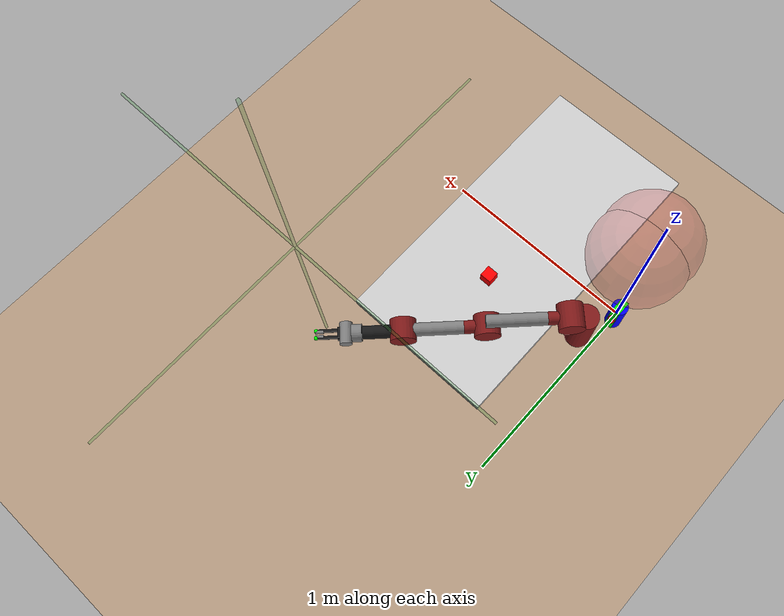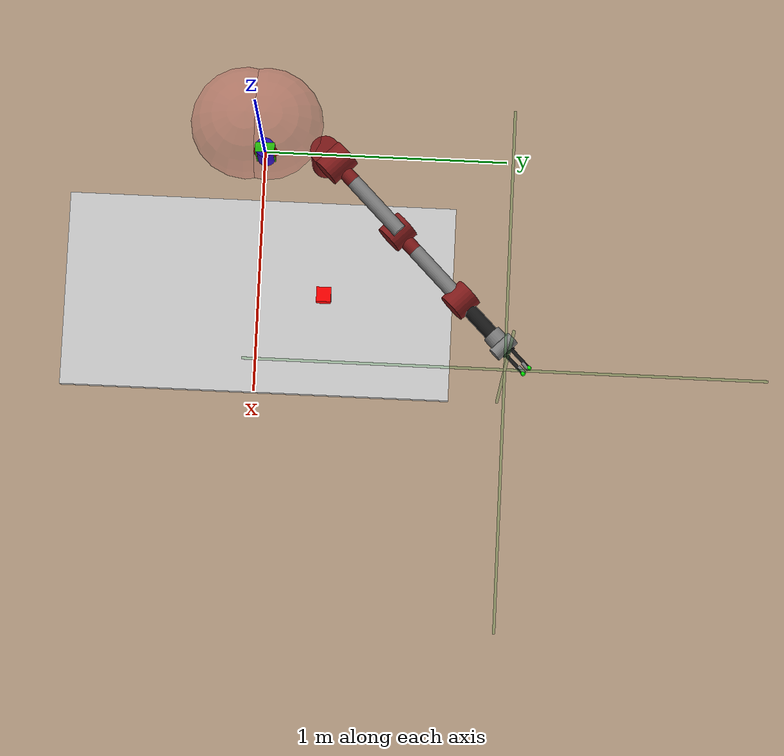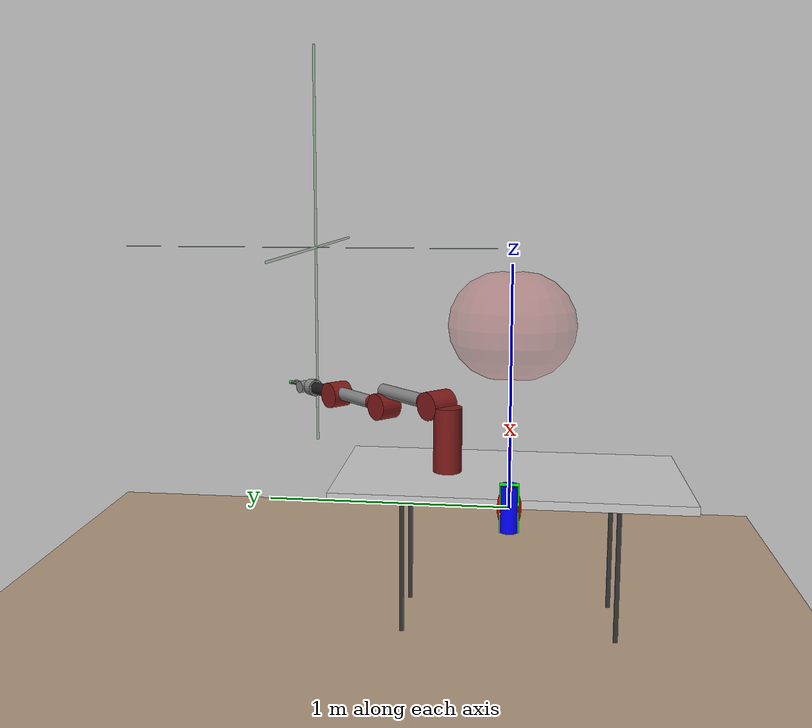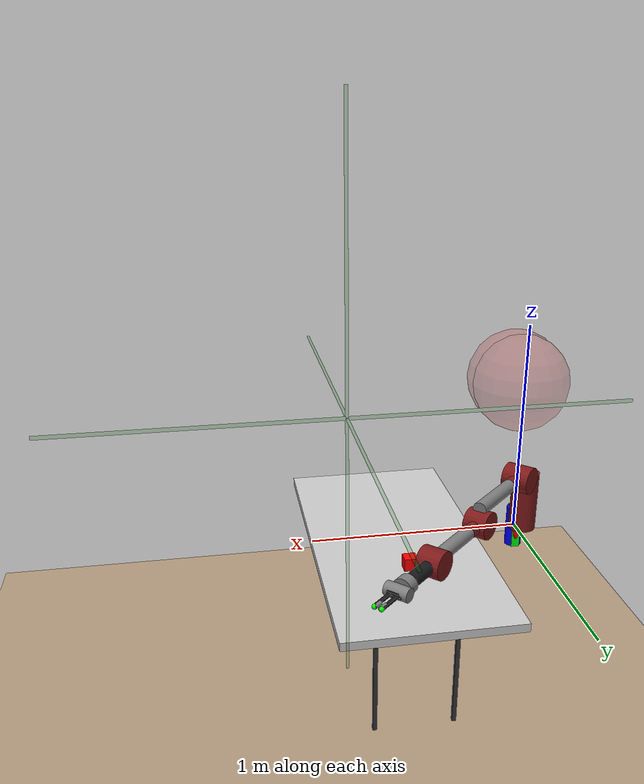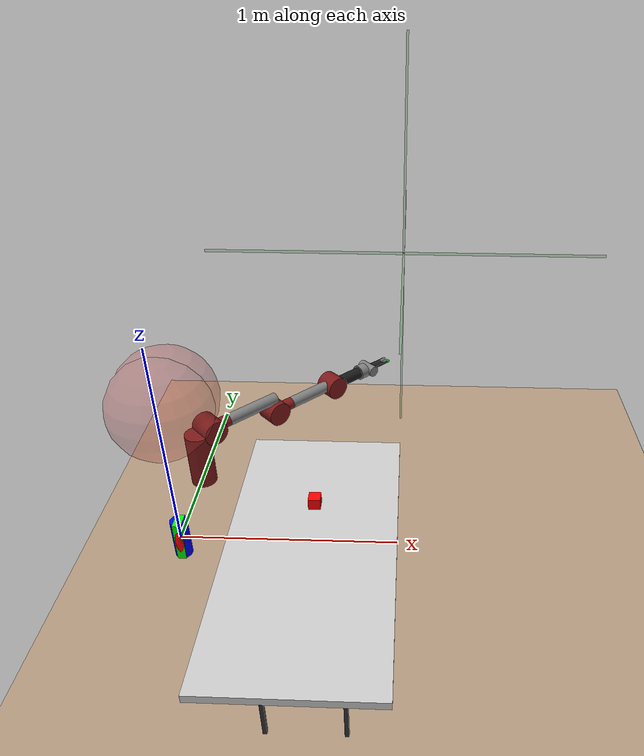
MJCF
<?xml version="1.0" encoding="utf-8"?>
<mujoco>
	<compiler coordinate="local" angle="radian" meshdir="meshes/" texturedir="texture/" strippath="false" />
	<option gravity="0 0 -9.8" timestep="0.002" cone="elliptic"/>

    <visual>
      <map znear="0.01"/>
    </visual>

	<include file="shared.xml"></include>

	<worldbody>

		<include file="robot_without_gripper.xml"></include>

		<body name="distractor1" pos="0.0 0.0 0.0">
            <site name="distractor1" type="box" pos="0.0 0.0 0" rgba="0 1.0 0 1" size="0.02 0.040 0.1"/>
            <joint name="distractor1" type="free" limited="false" damping="1"/>
            <inertial pos="0 0 0" mass="0.0000001" diaginertia="1 1 1"/>
        </body>

		<body name="distractor2" pos="0.0 0.0 0.0">
            <site name="distractor2" type="cylinder" pos="0.0 0.0 0" rgba="0 0 1.0 1" size="0.04 0.099"/>
            <joint name="distractor2" type="free" limited="false" damping="1"/>
            <inertial pos="0 0 0" mass="0.0000001" diaginertia="1 1 1"/>
        </body>

		<body name="distractor3" pos="0.0 0.0 0.0">
            <site name="distractor3" type="ellipsoid" pos="0.0 0.0 0" rgba="1.0 0 0 1" size="0.03 0.05 0.1"/>
            <joint name="distractor3" type="free" limited="false" damping="1"/>
            <inertial pos="0 0 0" mass="0.0000001" diaginertia="1 1 1"/>
        </body>

		<!-- object -->
		<body name="box" pos="0.59 0.27 0.0">
            <geom name="box" type="box"  rgba="1.0 0.0 0.0 1" size="0.03 0.03 0.03" contype="3" conaffinity="3" friction="1 0.005 0.0001" />
            <site name="box" pos="0.0 0.0 0" rgba="0 0 1 1" size="0.02 0.02 0.025"/>
            <joint name="box" type="free" limited="false" damping="1"/>
            <inertial pos="0 0 0" mass="0.1" diaginertia="1 1 1"/>
        </body>

		<body name="target" pos="0.0 0.0 0.0">
            <site name="target" pos="0.0 0.0 0" rgba="0 0 1 1" size="0.02 0.02 0.02"/>
            <joint name="target" type="free" limited="false" damping="1"/>
            <inertial pos="0 0 0" mass="0.00001"  diaginertia="1 1 1"/>
        </body>

	</worldbody>

	<actuator></actuator>
</mujoco>

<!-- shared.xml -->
<mujoco>

	<asset>
		<mesh name="base_link" file="torso/base_link.STL"/>
		<mesh name="base_link_collision" file="torso/base_link_collision.STL"/>
		<mesh name="PEDESTAL" file="base/PEDESTAL.STL"/>
		<mesh name="pedestal_link_collision" file="base/pedestal_link_collision.STL"/>
		<mesh name="H0" file="head/H0.STL"/>
		<mesh name="H1" file="head/H1.STL"/>
		<mesh name="S0" file="upper_shoulder/S0.STL"/>
		<mesh name="S1" file="lower_shoulder/S1.STL"/>
		<mesh name="E0" file="upper_elbow/E0.STL"/>
		<mesh name="E1" file="lower_elbow/E1.STL"/>
		<mesh name="W0" file="upper_forearm/W0.STL"/>
		<mesh name="W1" file="lower_forearm/W1.STL"/>
		<mesh name="W2" file="wrist/W2.STL"/>
		<mesh name="half_round_tip" file="electric_gripper/fingers/half_round_tip.STL" />
		<mesh name="electric_gripper_base" file="electric_gripper/electric_gripper_base.STL" />
		<mesh name="extended_narrow" file="electric_gripper/fingers/extended_narrow.STL"/>
		<mesh name="paddle_tip" file="electric_gripper/fingers/paddle_tip.STL"/>

		<!-- add texture files -->
		<texture builtin="gradient" height="100" rgb1="1 1 1" rgb2="0 0 0" type="skybox" width="100"/>
		<texture builtin="flat" height="1278" mark="cross" markrgb="1 1 1" name="texgeom" random="0.01" rgb1="0.8 0.6 0.4" rgb2="0.8 0.6 0.4" type="cube" width="127"/>
		<texture builtin="checker" height="100" name="texplane" rgb1="0 0 0" rgb2="0.8 0.8 0.8" type="2d" width="100"/>
		<material name="MatPlane" reflectance="0.5" shininess="1" specular="1" texrepeat="60 60" texture="texplane"/>
		<material name="geom" texture="texgeom" texuniform="true"/>

		<texture name="wooden" file="wooden.png" builtin="none" type="2d"/>
		<texture name="checker" file="checker.png" builtin="none" type="2d"/>
		<material name="tabletop1" texture="wooden" texuniform="true"/>
		<material name="tabletop2" texture="checker" texuniform="true"/>
	</asset>

	<equality>
		<weld body1="robot0:mocap" body2="left_gripper_base" solimp="0.9 0.95 0.001" solref="0.02 1"></weld>
	</equality>

	 <default>
		<geom margin="0.001" solimp="0.99 0.99 0.01" solref="0.01 1"/>
		<joint limited="true" damping="20" frictionloss="0" stiffness="0"/>
		<default class="viz">
			<geom contype="0" conaffinity="0" group="1" type="mesh"/>
		</default>

	 </default>

	 <contact>
		<exclude body1="left_upper_shoulder" body2="torso"/>
		<exclude body1="left_upper_shoulder" body2="left_upper_elbow"/>
		<exclude body1="left_lower_elbow" body2="left_upper_elbow"/>
		<exclude body1="collision_head_link_1" body2="torso"/>
		<exclude body1="collision_head_link_2" body2="torso"/>
		<exclude body1="l_gripper_r_finger" body2="l_gripper_l_finger"/>
	</contact>

</mujoco>

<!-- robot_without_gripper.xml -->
<mujoco>

    <body mocap="true" name="robot0:mocap" pos="1.0 1.0 1.0">
        <geom conaffinity="0" contype="0" pos="0 0 0" rgba="0 0.5 0 0.7" size="0.005 0.005 0.005" type="box"></geom>
        <geom conaffinity="0" contype="0" pos="0 0 0" rgba="0 0.5 0 0.1" size="1 0.005 0.005" type="box"></geom>
        <geom conaffinity="0" contype="0" pos="0 0 0" rgba="0 0.5 0 0.1" size="0.005 1 0.001" type="box"></geom>
        <geom conaffinity="0" contype="0" pos="0 0 0" rgba="0 0.5 0 0.1" size="0.005 0.005 1" type="box"></geom>
    </body>

    <light directional="false" castshadow="false" cutoff="90" exponent="1" diffuse="1 1 1" specular="0 0 0" pos="1 0 1.5" dir="-1 0 -2.5"/>
    <geom name="ground" type="plane" material="MatPlane" pos="0 0 -0.925" size="4 4 .05" rgba="0.7 0.6 0.5 1"/>

    <body name="cammount" pos="0.2 0 0.2">
      <joint name="cammount" type="free" limited="false" damping="1"/>
      <camera name="cam4" pos="0.0 0 0.0" euler="0.75 -0.75 2.5" fovy="55" mode="fixed"/>
      <inertial pos="0 0 0" mass="0.00001"  diaginertia="1 1 1"/>
    </body>

    <body name="base" pos="0 0 0">
        <inertial pos="0 0 0" mass="10" diaginertia="0.001 0.001 0.001" />
        <body name="collision_head_link_1" pos="0.11 0 0.75">
            <inertial pos="0 0 0" mass="0.0001" diaginertia="1e-008 1e-008 1e-008" />
            <geom type="sphere" size="0.22" rgba="0.8 0.3 0.3 0.3" pos="-0.07 -0.04 0" />
        </body>
        <body name="collision_head_link_2" pos="0.11 0 0.75">
            <inertial pos="0 0 0" mass="0.0001" diaginertia="1e-008 1e-008 1e-008" />
            <geom type="sphere" size="0.001" rgba="0.8 0.3 0.3 0.3" pos="0 0 0" />
            <geom type="sphere" size="0.22" rgba="0.8 0.3 0.3 0.3" pos="-0.07 0.04 0" />
        </body>
        <body name="torso" pos="0 0 0">
          <camera name="cam0" pos="0.5 0 1.5" euler="0.0 0.0 1.57" fovy="45" mode="fixed"/>

            <inertial pos="0 0 0" quat="0.997433 0.00167178 0.0715546 -0.00209003" mass="35.3365" diaginertia="1.87139 1.66268 0.779991" />

            <body name="left_arm_mount" pos="0.024645 0.219645 0.118588" quat="0.923879 0 0 0.382684">
                <inertial pos="0 0 0" mass="0.0001" diaginertia="1e-008 1e-008 1e-008" />
                <body name="left_upper_shoulder" pos="0.055695 0 0.011038">
                    <inertial pos="0.01783 0.00086 0.19127" quat="0.975667 0.0673303 -0.206117 0.0325173" mass="5.70044" diaginertia="0.0498344 0.0377511 0.0331351" />
                    <joint name="left_s0" type="hinge" pos="0 0 0" axis="0 0 1" range="-1.70168 1.70168"/>
                    <geom type="cylinder" size="0.06 0.1361" rgba="0.5 0.1 0.1 1" pos="0 0 0.1361" />
                    <body name="left_lower_shoulder" pos="0.069 0 0.27035" quat="0.707107 -0.707107 0 0">
                        <inertial pos="0.06845 0.00269 -0.00529" quat="0.447487 0.536948 0.56425 0.439391" mass="3.22698" diaginertia="0.0278991 0.0212327 0.0112937" />
                        <joint name="left_s1" type="hinge" pos="0 0 0" axis="0 0 1" range="-2.147 1.047"/>
                        <geom type="cylinder" size="0.06 0.06" rgba="0.5 0.1 0.1 1" pos="0 0 0" />
                        <body name="left_upper_elbow" pos="0.102 0 0" quat="0.5 0.5 0.5 0.5">
                            <inertial pos="-0.00276 0.00132 0.18086" quat="0.838995 -0.0423128 -0.121287 0.52876" mass="4.31272" diaginertia="0.0287695 0.0273625 0.011409" />
                            <joint name="left_e0" type="hinge" pos="0 0 0" axis="0 0 1" range="-3.05418 3.05418"/>
                            <geom type="cylinder" size="0.03 0.0535" rgba="0.5 0.1 0.1 1" pos="0 0 -0.0535" />
                            <geom name="left_upper_elbow_visual" type="cylinder" size="0.03 0.1365" pos="0 0 0.1365" />

							<body name="left_lower_elbow" pos="0.069 0 0.26242" quat="0.5 -0.5 -0.5 -0.5">
                                <inertial pos="0.02611 0.00159 -0.01117" quat="0.440433 0.577149 0.562777 0.395221" mass="2.07206" diaginertia="0.0132096 0.00950002 0.00685697" />
                                <joint name="left_e1" type="hinge" pos="0 0 0" axis="0 0 1" range="-0.05 2.618"/>
                                <geom type="cylinder" size="0.06 0.05" rgba="0.5 0.1 0.1 1" pos="0 0 0" />
                                <body name="left_upper_forearm" pos="0.10359 0 0" quat="0.5 0.5 0.5 0.5">
                                    <inertial pos="-0.00168 0.0046 0.13952" quat="0.892709 -0.0256256 0.00446984 0.449882" mass="2.24665" diaginertia="0.016916 0.0165511 0.00371123" />
                                    <joint name="left_w0" type="hinge" pos="0 0 0" axis="0 0 1" range="-3.059 3.059"/>
                                    <geom type="cylinder" size="0.03 0.044" rgba="0.5 0.1 0.1 1" pos="0 0 -0.044" />
									<geom name="left_upper_forearm_visual" type="cylinder" size="0.03 0.136" pos="0 0 0.136" />

                                    <body name="left_lower_forearm" pos="0.01 0 0.2707" quat="0.5 -0.5 -0.5 -0.5">
                                        <inertial pos="0.06041 0.00697 0.006" quat="0.456911 0.468526 0.475683 0.587743" mass="1.60979" diaginertia="0.00708828 0.00552689 0.00379383" />
                                        <joint name="left_w1" type="hinge" pos="0 0 0" axis="0 0 1" range="-1.5708 2.094"/>
                                        <geom type="cylinder" size="0.06 0.05" rgba="0.5 0.1 0.1 1" pos="0 0 0" />
                                        <body name="left_wrist" pos="0.115975 0 0" quat="0.5 0.5 0.5 0.5">
                                            <inertial pos="0.00198 0.00125 0.01855" quat="0.0594843 0.68926 -0.16016 0.704082" mass="0.35093" diaginertia="0.0003082 0.000269928 0.000251035" />
                                            <joint name="left_w2" type="hinge" pos="0 0 0" axis="0 0 1" range="-3.059 3.059"/>
                                            <geom type="cylinder" size="0.03 0.0825" rgba="0.1 0.1 0.1 1" pos="0 0 0" />
                                            <body name="left_hand" pos="0 0 0.11355">
                                                <inertial pos="0.01093 0.00042 -0.01532" quat="0.025365 0.814618 0.0196357 0.579109" mass="0.19125" diaginertia="0.000246058 0.000211549 0.000167391" />
                                                <geom type="cylinder" size="0.04 0.0232" pos="0 0 -0.0232" />

                                                <body name="left_gripper_base" pos="0 0 0.025">
                                                    <site name="grip" pos="0.0 0 0" rgba="1 0 0 1" size="0.02 0.02 0.02"/>
                                                    <inertial pos="0 0 0" quat="-0.5 0.5 0.5 0.5" mass="0.3" diaginertia="3e-08 2e-08 2e-08" />

                                                    <geom size="0.029 0.05" quat="0 0 0.707107 0.707107" type="cylinder" />

                                                    <body name="l_gripper_l_finger" pos="0 -0.0015 0.02">

                                                        <inertial pos="0 0 0" quat="0 0 0 -1" mass="0.02" diaginertia="0.01 0.01 0.01" />

                                                        <geom size="0.005 0.00675 0.05635" pos="0 0.01725 0.0615" quat="0 0 0 -1" type="box" rgba="0.1 0.1 0.1 1"/>
                                                        <geom size="0.005 0.025 0.0085" pos="-0.005 -0.003 0.0083" quat="0 0 0 -1" type="box" rgba="0.1 0.1 0.1 1"/>
                                                        <body name="l_gripper_l_finger_tip" pos="0 0.01725 0.1127">
                                                            <site name="grip_l" pos="0.0 0.0 0" rgba="0 1 0 1" size="0.01 0.01 0.01"/>
                                                            <inertial pos="0 0 0" quat="0 0 0 1" mass="0.01" diaginertia="0.01 0.01 0.01" />

                                                            <!-- paddle tip  -->

                                                            <!-- half round tip -->
                                                            <geom size="0.008 0.0185" pos="0 -0.0045 -0.015" quat="0 0 0 1" type="cylinder" />
                                                        </body>
                                                    </body>
                                                     <body name="l_gripper_r_finger" pos="0 0.0015 0.02">
                                                        <inertial pos="0 0 0" mass="0.02" diaginertia="0.01 0.01 0.01" />
                                                        <!-- extended narrow finger-->

                                                        <geom size="0.005 0.00675 0.05635" pos="0 -0.01725 0.0615" type="box" rgba="0.1 0.1 0.1 1"/>
                                                        <geom size="0.005 0.025 0.0085" pos="0.005 0.003 0.0083" type="box" rgba="0.1 0.1 0.1 1"/>
                                                        <body name="l_gripper_r_finger_tip" pos="0 -0.01725 0.1127">
                                                            <site name="grip_r" pos="0.0 0.0 0" rgba="0 1 0 1" size="0.01 0.01 0.01"/>
                                                            <inertial pos="0 0 0" mass="0.01" diaginertia="0.01 0.01 0.01" />
                                                            <!-- paddle tip -->
                                                            <!-- half round tip -->
                                                            <geom size="0.008 0.0185" pos="0 0.0045 -0.015" type="cylinder" />
                                                        </body>
                                                    </body>
                                                </body>
                                            </body>
                                        </body>
                                    </body>
                                </body>
                            </body>
                        </body>
                    </body>
                </body>
            </body>
        </body>
    </body>

    <!-- Table -->
    <body name="top" pos="0.6 0.0 -0.05">
        <geom name="top" rgba="0.8 0.8 0.8 1" material="tabletop1" type="box" size="0.4 0.8 0.02" contype="1" conaffinity="1" friction="1 0.005 0.0001"/>

        <!-- leg 1 -->
        <body name="leg1" pos="0.19 0.49 -0.35">
            <geom name="leg1" rgba="0.2 0.2 0.2 1" type="box" size="0.01 0.01 0.35" contype="2" conaffinity="2" />
        </body>

        <!-- leg 2 -->
        <body name="leg2" pos="0.19 -0.49 -0.35">
            <geom name="leg2" rgba="0.2 0.2 0.2 2" type="box" size="0.01 0.01 0.35" contype="2" conaffinity="2" />
        </body>

        <!-- leg 3 -->
        <body name="leg3" pos="-0.19 0.49 -0.35">
            <geom name="leg3" rgba="0.2 0.2 0.2 3" type="box" size="0.01 0.01 0.35" contype="1" conaffinity="1" />
        </body>

        <!-- leg 4 -->
        <body name="leg4" pos="-0.19 -0.49 -0.35">
            <geom name="leg4" rgba="0.2 0.2 0.2 4" type="box" size="0.01 0.01 0.35" contype="1" conaffinity="1" />
        </body>

    </body>

</mujoco>
